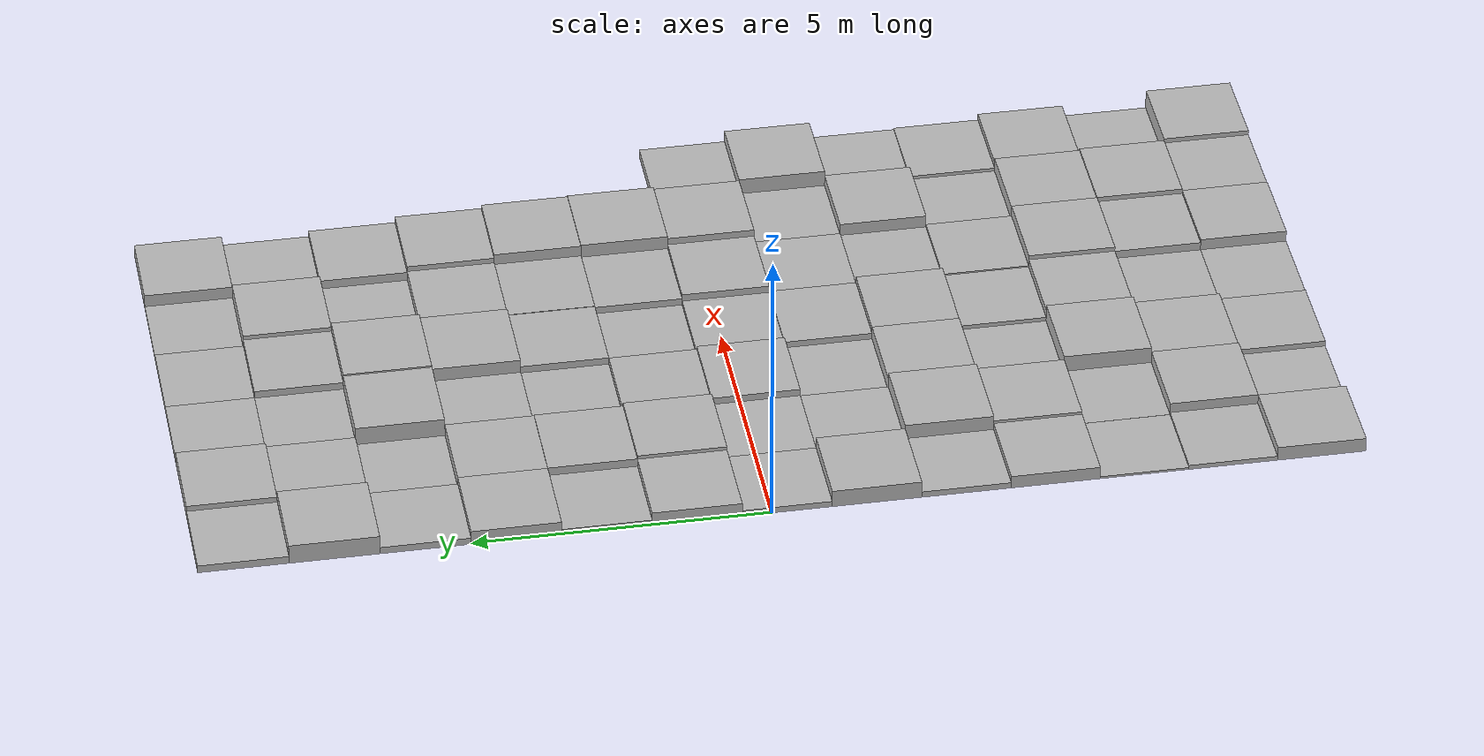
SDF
<sdf version="1.6">
 <model name="uneven_terrain">
  <static>true</static>
  <link name="block_0_0">
   <pose>0.75 -9.25 0.12788535969157674 0 0 0</pose>
   <collision name="collision">
    <geometry><box><size>1.5 1.5 0.2557707193831535</size></box></geometry>
   </collision>
   <visual name="visual">
    <geometry><box><size>1.5 1.5 0.2557707193831535</size></box></geometry>
    <material>
     <script><uri>file://media/materials/scripts/gazebo.material</uri><n>Gazebo/Grey</n></script>
    </material>
   </visual>
  </link>
  <link name="block_0_1">
   <pose>2.25 -9.25 0.005002151044533387 0 0 0</pose>
   <collision name="collision">
    <geometry><box><size>1.5 1.5 0.010004302089066774</size></box></geometry>
   </collision>
   <visual name="visual">
    <geometry><box><size>1.5 1.5 0.010004302089066774</size></box></geometry>
    <material>
     <script><uri>file://media/materials/scripts/gazebo.material</uri><n>Gazebo/Grey</n></script>
    </material>
   </visual>
  </link>
  <link name="block_0_2">
   <pose>3.75 -9.25 0.05500586367382385 0 0 0</pose>
   <collision name="collision">
    <geometry><box><size>1.5 1.5 0.1100117273476477</size></box></geometry>
   </collision>
   <visual name="visual">
    <geometry><box><size>1.5 1.5 0.1100117273476477</size></box></geometry>
    <material>
     <script><uri>file://media/materials/scripts/gazebo.material</uri><n>Gazebo/Grey</n></script>
    </material>
   </visual>
  </link>
  <link name="block_0_3">
   <pose>5.25 -9.25 0.04464214762976455 0 0 0</pose>
   <collision name="collision">
    <geometry><box><size>1.5 1.5 0.0892842952595291</size></box></geometry>
   </collision>
   <visual name="visual">
    <geometry><box><size>1.5 1.5 0.0892842952595291</size></box></geometry>
    <material>
     <script><uri>file://media/materials/scripts/gazebo.material</uri><n>Gazebo/Grey</n></script>
    </material>
   </visual>
  </link>
  <link name="block_0_4">
   <pose>6.75 -9.25 0.14729424283280249 0 0 0</pose>
   <collision name="collision">
    <geometry><box><size>1.5 1.5 0.29458848566560497</size></box></geometry>
   </collision>
   <visual name="visual">
    <geometry><box><size>1.5 1.5 0.29458848566560497</size></box></geometry>
    <material>
     <script><uri>file://media/materials/scripts/gazebo.material</uri><n>Gazebo/Grey</n></script>
    </material>
   </visual>
  </link>
  <link name="block_0_5">
   <pose>8.25 -9.25 0.13533989748458228 0 0 0</pose>
   <collision name="collision">
    <geometry><box><size>1.5 1.5 0.27067979496916456</size></box></geometry>
   </collision>
   <visual name="visual">
    <geometry><box><size>1.5 1.5 0.27067979496916456</size></box></geometry>
    <material>
     <script><uri>file://media/materials/scripts/gazebo.material</uri><n>Gazebo/Grey</n></script>
    </material>
   </visual>
  </link>
  <link name="block_0_6">
   <pose>9.75 -9.25 0.1784359135409691 0 0 0</pose>
   <collision name="collision">
    <geometry><box><size>1.5 1.5 0.3568718270819382</size></box></geometry>
   </collision>
   <visual name="visual">
    <geometry><box><size>1.5 1.5 0.3568718270819382</size></box></geometry>
    <material>
     <script><uri>file://media/materials/scripts/gazebo.material</uri><n>Gazebo/Grey</n></script>
    </material>
   </visual>
  </link>
  <link name="block_1_0">
   <pose>0.75 -7.75 0.0397675301373297 0 0 0</pose>
   <collision name="collision">
    <geometry><box><size>1.5 1.5 0.0795350602746594</size></box></geometry>
   </collision>
   <visual name="visual">
    <geometry><box><size>1.5 1.5 0.0795350602746594</size></box></geometry>
    <material>
     <script><uri>file://media/materials/scripts/gazebo.material</uri><n>Gazebo/Grey</n></script>
    </material>
   </visual>
  </link>
  <link name="block_1_1">
   <pose>2.25 -7.75 0.12997688755590464 0 0 0</pose>
   <collision name="collision">
    <geometry><box><size>1.5 1.5 0.2599537751118093</size></box></geometry>
   </collision>
   <visual name="visual">
    <geometry><box><size>1.5 1.5 0.2599537751118093</size></box></geometry>
    <material>
     <script><uri>file://media/materials/scripts/gazebo.material</uri><n>Gazebo/Grey</n></script>
    </material>
   </visual>
  </link>
  <link name="block_1_2">
   <pose>3.75 -7.75 0.10898829612064334 0 0 0</pose>
   <collision name="collision">
    <geometry><box><size>1.5 1.5 0.21797659224128668</size></box></geometry>
   </collision>
   <visual name="visual">
    <geometry><box><size>1.5 1.5 0.21797659224128668</size></box></geometry>
    <material>
     <script><uri>file://media/materials/scripts/gazebo.material</uri><n>Gazebo/Grey</n></script>
    </material>
   </visual>
  </link>
  <link name="block_1_3">
   <pose>5.25 -7.75 0.04408812440813934 0 0 0</pose>
   <collision name="collision">
    <geometry><box><size>1.5 1.5 0.08817624881627868</size></box></geometry>
   </collision>
   <visual name="visual">
    <geometry><box><size>1.5 1.5 0.08817624881627868</size></box></geometry>
    <material>
     <script><uri>file://media/materials/scripts/gazebo.material</uri><n>Gazebo/Grey</n></script>
    </material>
   </visual>
  </link>
  <link name="block_1_4">
   <pose>6.75 -7.75 0.11785313677518175 0 0 0</pose>
   <collision name="collision">
    <geometry><box><size>1.5 1.5 0.2357062735503635</size></box></geometry>
   </collision>
   <visual name="visual">
    <geometry><box><size>1.5 1.5 0.2357062735503635</size></box></geometry>
    <material>
     <script><uri>file://media/materials/scripts/gazebo.material</uri><n>Gazebo/Grey</n></script>
    </material>
   </visual>
  </link>
  <link name="block_1_5">
   <pose>8.25 -7.75 0.16188609133556534 0 0 0</pose>
   <collision name="collision">
    <geometry><box><size>1.5 1.5 0.32377218267113067</size></box></geometry>
   </collision>
   <visual name="visual">
    <geometry><box><size>1.5 1.5 0.32377218267113067</size></box></geometry>
    <material>
     <script><uri>file://media/materials/scripts/gazebo.material</uri><n>Gazebo/Grey</n></script>
    </material>
   </visual>
  </link>
  <link name="block_1_6">
   <pose>9.75 -7.75 0.0012997519356122034 0 0 0</pose>
   <collision name="collision">
    <geometry><box><size>1.5 1.5 0.002599503871224407</size></box></geometry>
   </collision>
   <visual name="visual">
    <geometry><box><size>1.5 1.5 0.002599503871224407</size></box></geometry>
    <material>
     <script><uri>file://media/materials/scripts/gazebo.material</uri><n>Gazebo/Grey</n></script>
    </material>
   </visual>
  </link>
  <link name="block_2_0">
   <pose>0.75 -6.25 0.01854916867602958 0 0 0</pose>
   <collision name="collision">
    <geometry><box><size>1.5 1.5 0.03709833735205916</size></box></geometry>
   </collision>
   <visual name="visual">
    <geometry><box><size>1.5 1.5 0.03709833735205916</size></box></geometry>
    <material>
     <script><uri>file://media/materials/scripts/gazebo.material</uri><n>Gazebo/Grey</n></script>
    </material>
   </visual>
  </link>
  <link name="block_2_1">
   <pose>2.25 -6.25 0.019343275366692805 0 0 0</pose>
   <collision name="collision">
    <geometry><box><size>1.5 1.5 0.03868655073338561</size></box></geometry>
   </collision>
   <visual name="visual">
    <geometry><box><size>1.5 1.5 0.03868655073338561</size></box></geometry>
    <material>
     <script><uri>file://media/materials/scripts/gazebo.material</uri><n>Gazebo/Grey</n></script>
    </material>
   </visual>
  </link>
  <link name="block_2_2">
   <pose>3.75 -6.25 0.16949887326949198 0 0 0</pose>
   <collision name="collision">
    <geometry><box><size>1.5 1.5 0.33899774653898396</size></box></geometry>
   </collision>
   <visual name="visual">
    <geometry><box><size>1.5 1.5 0.33899774653898396</size></box></geometry>
    <material>
     <script><uri>file://media/materials/scripts/gazebo.material</uri><n>Gazebo/Grey</n></script>
    </material>
   </visual>
  </link>
  <link name="block_2_3">
   <pose>5.25 -6.25 0.12074520627337822 0 0 0</pose>
   <collision name="collision">
    <geometry><box><size>1.5 1.5 0.24149041254675643</size></box></geometry>
   </collision>
   <visual name="visual">
    <geometry><box><size>1.5 1.5 0.24149041254675643</size></box></geometry>
    <material>
     <script><uri>file://media/materials/scripts/gazebo.material</uri><n>Gazebo/Grey</n></script>
    </material>
   </visual>
  </link>
  <link name="block_2_4">
   <pose>6.75 -6.25 0.16142565465487604 0 0 0</pose>
   <collision name="collision">
    <geometry><box><size>1.5 1.5 0.3228513093097521</size></box></geometry>
   </collision>
   <visual name="visual">
    <geometry><box><size>1.5 1.5 0.3228513093097521</size></box></geometry>
    <material>
     <script><uri>file://media/materials/scripts/gazebo.material</uri><n>Gazebo/Grey</n></script>
    </material>
   </visual>
  </link>
  <link name="block_2_5">
   <pose>8.25 -6.25 0.14594635733876357 0 0 0</pose>
   <collision name="collision">
    <geometry><box><size>1.5 1.5 0.29189271467752714</size></box></geometry>
   </collision>
   <visual name="visual">
    <geometry><box><size>1.5 1.5 0.29189271467752714</size></box></geometry>
    <material>
     <script><uri>file://media/materials/scripts/gazebo.material</uri><n>Gazebo/Grey</n></script>
    </material>
   </visual>
  </link>
  <link name="block_2_6">
   <pose>9.75 -6.25 0.10724561829094015 0 0 0</pose>
   <collision name="collision">
    <geometry><box><size>1.5 1.5 0.2144912365818803</size></box></geometry>
   </collision>
   <visual name="visual">
    <geometry><box><size>1.5 1.5 0.2144912365818803</size></box></geometry>
    <material>
     <script><uri>file://media/materials/scripts/gazebo.material</uri><n>Gazebo/Grey</n></script>
    </material>
   </visual>
  </link>
  <link name="block_3_0">
   <pose>0.75 -4.75 0.11547042905135241 0 0 0</pose>
   <collision name="collision">
    <geometry><box><size>1.5 1.5 0.23094085810270482</size></box></geometry>
   </collision>
   <visual name="visual">
    <geometry><box><size>1.5 1.5 0.23094085810270482</size></box></geometry>
    <material>
     <script><uri>file://media/materials/scripts/gazebo.material</uri><n>Gazebo/Grey</n></script>
    </material>
   </visual>
  </link>
  <link name="block_3_1">
   <pose>2.25 -4.75 0.1409143672429847 0 0 0</pose>
   <collision name="collision">
    <geometry><box><size>1.5 1.5 0.2818287344859694</size></box></geometry>
   </collision>
   <visual name="visual">
    <geometry><box><size>1.5 1.5 0.2818287344859694</size></box></geometry>
    <material>
     <script><uri>file://media/materials/scripts/gazebo.material</uri><n>Gazebo/Grey</n></script>
    </material>
   </visual>
  </link>
  <link name="block_3_2">
   <pose>3.75 -4.75 0.009164876731132443 0 0 0</pose>
   <collision name="collision">
    <geometry><box><size>1.5 1.5 0.018329753462264887</size></box></geometry>
   </collision>
   <visual name="visual">
    <geometry><box><size>1.5 1.5 0.018329753462264887</size></box></geometry>
    <material>
     <script><uri>file://media/materials/scripts/gazebo.material</uri><n>Gazebo/Grey</n></script>
    </material>
   </visual>
  </link>
  <link name="block_3_3">
   <pose>5.25 -4.75 0.04557965513030937 0 0 0</pose>
   <collision name="collision">
    <geometry><box><size>1.5 1.5 0.09115931026061874</size></box></geometry>
   </collision>
   <visual name="visual">
    <geometry><box><size>1.5 1.5 0.09115931026061874</size></box></geometry>
    <material>
     <script><uri>file://media/materials/scripts/gazebo.material</uri><n>Gazebo/Grey</n></script>
    </material>
   </visual>
  </link>
  <link name="block_3_4">
   <pose>6.75 -4.75 0.057877592720421436 0 0 0</pose>
   <collision name="collision">
    <geometry><box><size>1.5 1.5 0.11575518544084287</size></box></geometry>
   </collision>
   <visual name="visual">
    <geometry><box><size>1.5 1.5 0.11575518544084287</size></box></geometry>
    <material>
     <script><uri>file://media/materials/scripts/gazebo.material</uri><n>Gazebo/Grey</n></script>
    </material>
   </visual>
  </link>
  <link name="block_3_5">
   <pose>8.25 -4.75 0.015958395384725498 0 0 0</pose>
   <collision name="collision">
    <geometry><box><size>1.5 1.5 0.031916790769450996</size></box></geometry>
   </collision>
   <visual name="visual">
    <geometry><box><size>1.5 1.5 0.031916790769450996</size></box></geometry>
    <material>
     <script><uri>file://media/materials/scripts/gazebo.material</uri><n>Gazebo/Grey</n></script>
    </material>
   </visual>
  </link>
  <link name="block_3_6">
   <pose>9.75 -4.75 0.04655817727220604 0 0 0</pose>
   <collision name="collision">
    <geometry><box><size>1.5 1.5 0.09311635454441208</size></box></geometry>
   </collision>
   <visual name="visual">
    <geometry><box><size>1.5 1.5 0.09311635454441208</size></box></geometry>
    <material>
     <script><uri>file://media/materials/scripts/gazebo.material</uri><n>Gazebo/Grey</n></script>
    </material>
   </visual>
  </link>
  <link name="block_4_0">
   <pose>0.75 -3.25 0.053395564409822675 0 0 0</pose>
   <collision name="collision">
    <geometry><box><size>1.5 1.5 0.10679112881964535</size></box></geometry>
   </collision>
   <visual name="visual">
    <geometry><box><size>1.5 1.5 0.10679112881964535</size></box></geometry>
    <material>
     <script><uri>file://media/materials/scripts/gazebo.material</uri><n>Gazebo/Grey</n></script>
    </material>
   </visual>
  </link>
  <link name="block_4_1">
   <pose>2.25 -3.25 0.1873309175424988 0 0 0</pose>
   <collision name="collision">
    <geometry><box><size>1.5 1.5 0.3746618350849976</size></box></geometry>
   </collision>
   <visual name="visual">
    <geometry><box><size>1.5 1.5 0.3746618350849976</size></box></geometry>
    <material>
     <script><uri>file://media/materials/scripts/gazebo.material</uri><n>Gazebo/Grey</n></script>
    </material>
   </visual>
  </link>
  <link name="block_4_2">
   <pose>3.75 -3.25 0.1296070770493187 0 0 0</pose>
   <collision name="collision">
    <geometry><box><size>1.5 1.5 0.2592141540986374</size></box></geometry>
   </collision>
   <visual name="visual">
    <geometry><box><size>1.5 1.5 0.2592141540986374</size></box></geometry>
    <material>
     <script><uri>file://media/materials/scripts/gazebo.material</uri><n>Gazebo/Grey</n></script>
    </material>
   </visual>
  </link>
  <link name="block_4_3">
   <pose>5.25 -3.25 0.12182620113339765 0 0 0</pose>
   <collision name="collision">
    <geometry><box><size>1.5 1.5 0.2436524022667953</size></box></geometry>
   </collision>
   <visual name="visual">
    <geometry><box><size>1.5 1.5 0.2436524022667953</size></box></geometry>
    <material>
     <script><uri>file://media/materials/scripts/gazebo.material</uri><n>Gazebo/Grey</n></script>
    </material>
   </visual>
  </link>
  <link name="block_4_4">
   <pose>6.75 -3.25 0.0342277296396194 0 0 0</pose>
   <collision name="collision">
    <geometry><box><size>1.5 1.5 0.0684554592792388</size></box></geometry>
   </collision>
   <visual name="visual">
    <geometry><box><size>1.5 1.5 0.0684554592792388</size></box></geometry>
    <material>
     <script><uri>file://media/materials/scripts/gazebo.material</uri><n>Gazebo/Grey</n></script>
    </material>
   </visual>
  </link>
  <link name="block_4_5">
   <pose>8.25 -3.25 0.14582535959006984 0 0 0</pose>
   <collision name="collision">
    <geometry><box><size>1.5 1.5 0.2916507191801397</size></box></geometry>
   </collision>
   <visual name="visual">
    <geometry><box><size>1.5 1.5 0.2916507191801397</size></box></geometry>
    <material>
     <script><uri>file://media/materials/scripts/gazebo.material</uri><n>Gazebo/Grey</n></script>
    </material>
   </visual>
  </link>
  <link name="block_4_6">
   <pose>9.75 -3.25 0.03268049875238568 0 0 0</pose>
   <collision name="collision">
    <geometry><box><size>1.5 1.5 0.06536099750477135</size></box></geometry>
   </collision>
   <visual name="visual">
    <geometry><box><size>1.5 1.5 0.06536099750477135</size></box></geometry>
    <material>
     <script><uri>file://media/materials/scripts/gazebo.material</uri><n>Gazebo/Grey</n></script>
    </material>
   </visual>
  </link>
  <link name="block_5_0">
   <pose>0.75 -1.75 0.15519998230924897 0 0 0</pose>
   <collision name="collision">
    <geometry><box><size>1.5 1.5 0.31039996461849795</size></box></geometry>
   </collision>
   <visual name="visual">
    <geometry><box><size>1.5 1.5 0.31039996461849795</size></box></geometry>
    <material>
     <script><uri>file://media/materials/scripts/gazebo.material</uri><n>Gazebo/Grey</n></script>
    </material>
   </visual>
  </link>
  <link name="block_5_1">
   <pose>2.25 -1.75 0.04580961439282088 0 0 0</pose>
   <collision name="collision">
    <geometry><box><size>1.5 1.5 0.09161922878564176</size></box></geometry>
   </collision>
   <visual name="visual">
    <geometry><box><size>1.5 1.5 0.09161922878564176</size></box></geometry>
    <material>
     <script><uri>file://media/materials/scripts/gazebo.material</uri><n>Gazebo/Grey</n></script>
    </material>
   </visual>
  </link>
  <link name="block_5_2">
   <pose>3.75 -1.75 0.0064200487808075525 0 0 0</pose>
   <collision name="collision">
    <geometry><box><size>1.5 1.5 0.012840097561615105</size></box></geometry>
   </collision>
   <visual name="visual">
    <geometry><box><size>1.5 1.5 0.012840097561615105</size></box></geometry>
    <material>
     <script><uri>file://media/materials/scripts/gazebo.material</uri><n>Gazebo/Grey</n></script>
    </material>
   </visual>
  </link>
  <link name="block_5_3">
   <pose>5.25 -1.75 0.06309060961181638 0 0 0</pose>
   <collision name="collision">
    <geometry><box><size>1.5 1.5 0.12618121922363276</size></box></geometry>
   </collision>
   <visual name="visual">
    <geometry><box><size>1.5 1.5 0.12618121922363276</size></box></geometry>
    <material>
     <script><uri>file://media/materials/scripts/gazebo.material</uri><n>Gazebo/Grey</n></script>
    </material>
   </visual>
  </link>
  <link name="block_5_4">
   <pose>6.75 -1.75 0.053548175195140546 0 0 0</pose>
   <collision name="collision">
    <geometry><box><size>1.5 1.5 0.10709635039028109</size></box></geometry>
   </collision>
   <visual name="visual">
    <geometry><box><size>1.5 1.5 0.10709635039028109</size></box></geometry>
    <material>
     <script><uri>file://media/materials/scripts/gazebo.material</uri><n>Gazebo/Grey</n></script>
    </material>
   </visual>
  </link>
  <link name="block_5_5">
   <pose>8.25 -1.75 0.04219656871726529 0 0 0</pose>
   <collision name="collision">
    <geometry><box><size>1.5 1.5 0.08439313743453059</size></box></geometry>
   </collision>
   <visual name="visual">
    <geometry><box><size>1.5 1.5 0.08439313743453059</size></box></geometry>
    <material>
     <script><uri>file://media/materials/scripts/gazebo.material</uri><n>Gazebo/Grey</n></script>
    </material>
   </visual>
  </link>
  <link name="block_5_6">
   <pose>9.75 -1.75 0.1885819428670109 0 0 0</pose>
   <collision name="collision">
    <geometry><box><size>1.5 1.5 0.3771638857340218</size></box></geometry>
   </collision>
   <visual name="visual">
    <geometry><box><size>1.5 1.5 0.3771638857340218</size></box></geometry>
    <material>
     <script><uri>file://media/materials/scripts/gazebo.material</uri><n>Gazebo/Grey</n></script>
    </material>
   </visual>
  </link>
  <link name="block_6_0">
   <pose>0.75 -0.25 0.052976033299610495 0 0 0</pose>
   <collision name="collision">
    <geometry><box><size>1.5 1.5 0.10595206659922099</size></box></geometry>
   </collision>
   <visual name="visual">
    <geometry><box><size>1.5 1.5 0.10595206659922099</size></box></geometry>
    <material>
     <script><uri>file://media/materials/scripts/gazebo.material</uri><n>Gazebo/Grey</n></script>
    </material>
   </visual>
  </link>
  <link name="block_6_1">
   <pose>2.25 -0.25 0.049325501538796696 0 0 0</pose>
   <collision name="collision">
    <geometry><box><size>1.5 1.5 0.09865100307759339</size></box></geometry>
   </collision>
   <visual name="visual">
    <geometry><box><size>1.5 1.5 0.09865100307759339</size></box></geometry>
    <material>
     <script><uri>file://media/materials/scripts/gazebo.material</uri><n>Gazebo/Grey</n></script>
    </material>
   </visual>
  </link>
  <link name="block_6_2">
   <pose>3.75 -0.25 0.11227362683263016 0 0 0</pose>
   <collision name="collision">
    <geometry><box><size>1.5 1.5 0.22454725366526032</size></box></geometry>
   </collision>
   <visual name="visual">
    <geometry><box><size>1.5 1.5 0.22454725366526032</size></box></geometry>
    <material>
     <script><uri>file://media/materials/scripts/gazebo.material</uri><n>Gazebo/Grey</n></script>
    </material>
   </visual>
  </link>
  <link name="block_6_3">
   <pose>5.25 -0.25 0.05254832170458706 0 0 0</pose>
   <collision name="collision">
    <geometry><box><size>1.5 1.5 0.10509664340917411</size></box></geometry>
   </collision>
   <visual name="visual">
    <geometry><box><size>1.5 1.5 0.10509664340917411</size></box></geometry>
    <material>
     <script><uri>file://media/materials/scripts/gazebo.material</uri><n>Gazebo/Grey</n></script>
    </material>
   </visual>
  </link>
  <link name="block_6_4">
   <pose>6.75 -0.25 0.11691719804470811 0 0 0</pose>
   <collision name="collision">
    <geometry><box><size>1.5 1.5 0.23383439608941622</size></box></geometry>
   </collision>
   <visual name="visual">
    <geometry><box><size>1.5 1.5 0.23383439608941622</size></box></geometry>
    <material>
     <script><uri>file://media/materials/scripts/gazebo.material</uri><n>Gazebo/Grey</n></script>
    </material>
   </visual>
  </link>
  <link name="block_6_5">
   <pose>8.25 -0.25 0.17956457672049542 0 0 0</pose>
   <collision name="collision">
    <geometry><box><size>1.5 1.5 0.35912915344099083</size></box></geometry>
   </collision>
   <visual name="visual">
    <geometry><box><size>1.5 1.5 0.35912915344099083</size></box></geometry>
    <material>
     <script><uri>file://media/materials/scripts/gazebo.material</uri><n>Gazebo/Grey</n></script>
    </material>
   </visual>
  </link>
  <link name="block_6_6">
   <pose>9.75 -0.25 0.07988010102807946 0 0 0</pose>
   <collision name="collision">
    <geometry><box><size>1.5 1.5 0.15976020205615893</size></box></geometry>
   </collision>
   <visual name="visual">
    <geometry><box><size>1.5 1.5 0.15976020205615893</size></box></geometry>
    <material>
     <script><uri>file://media/materials/scripts/gazebo.material</uri><n>Gazebo/Grey</n></script>
    </material>
   </visual>
  </link>
  <link name="block_7_0">
   <pose>0.75 1.25 0.12548920834061802 0 0 0</pose>
   <collision name="collision">
    <geometry><box><size>1.5 1.5 0.25097841668123605</size></box></geometry>
   </collision>
   <visual name="visual">
    <geometry><box><size>1.5 1.5 0.25097841668123605</size></box></geometry>
    <material>
     <script><uri>file://media/materials/scripts/gazebo.material</uri><n>Gazebo/Grey</n></script>
    </material>
   </visual>
  </link>
  <link name="block_7_1">
   <pose>2.25 1.25 0.15841587287259284 0 0 0</pose>
   <collision name="collision">
    <geometry><box><size>1.5 1.5 0.3168317457451857</size></box></geometry>
   </collision>
   <visual name="visual">
    <geometry><box><size>1.5 1.5 0.3168317457451857</size></box></geometry>
    <material>
     <script><uri>file://media/materials/scripts/gazebo.material</uri><n>Gazebo/Grey</n></script>
    </material>
   </visual>
  </link>
  <link name="block_7_2">
   <pose>3.75 1.25 0.08443199335993681 0 0 0</pose>
   <collision name="collision">
    <geometry><box><size>1.5 1.5 0.16886398671987363</size></box></geometry>
   </collision>
   <visual name="visual">
    <geometry><box><size>1.5 1.5 0.16886398671987363</size></box></geometry>
    <material>
     <script><uri>file://media/materials/scripts/gazebo.material</uri><n>Gazebo/Grey</n></script>
    </material>
   </visual>
  </link>
  <link name="block_7_3">
   <pose>5.25 1.25 0.012705541230391427 0 0 0</pose>
   <collision name="collision">
    <geometry><box><size>1.5 1.5 0.025411082460782854</size></box></geometry>
   </collision>
   <visual name="visual">
    <geometry><box><size>1.5 1.5 0.025411082460782854</size></box></geometry>
    <material>
     <script><uri>file://media/materials/scripts/gazebo.material</uri><n>Gazebo/Grey</n></script>
    </material>
   </visual>
  </link>
  <link name="block_7_4">
   <pose>6.75 1.25 0.07632385730130736 0 0 0</pose>
   <collision name="collision">
    <geometry><box><size>1.5 1.5 0.15264771460261473</size></box></geometry>
   </collision>
   <visual name="visual">
    <geometry><box><size>1.5 1.5 0.15264771460261473</size></box></geometry>
    <material>
     <script><uri>file://media/materials/scripts/gazebo.material</uri><n>Gazebo/Grey</n></script>
    </material>
   </visual>
  </link>
  <link name="block_7_5">
   <pose>8.25 1.25 0.19922427604801937 0 0 0</pose>
   <collision name="collision">
    <geometry><box><size>1.5 1.5 0.39844855209603874</size></box></geometry>
   </collision>
   <visual name="visual">
    <geometry><box><size>1.5 1.5 0.39844855209603874</size></box></geometry>
    <material>
     <script><uri>file://media/materials/scripts/gazebo.material</uri><n>Gazebo/Grey</n></script>
    </material>
   </visual>
  </link>
  <link name="block_8_0">
   <pose>0.75 2.75 0.05336503799050856 0 0 0</pose>
   <collision name="collision">
    <geometry><box><size>1.5 1.5 0.10673007598101712</size></box></geometry>
   </collision>
   <visual name="visual">
    <geometry><box><size>1.5 1.5 0.10673007598101712</size></box></geometry>
    <material>
     <script><uri>file://media/materials/scripts/gazebo.material</uri><n>Gazebo/Grey</n></script>
    </material>
   </visual>
  </link>
  <link name="block_8_1">
   <pose>2.25 2.75 0.12819235971596163 0 0 0</pose>
   <collision name="collision">
    <geometry><box><size>1.5 1.5 0.25638471943192326</size></box></geometry>
   </collision>
   <visual name="visual">
    <geometry><box><size>1.5 1.5 0.25638471943192326</size></box></geometry>
    <material>
     <script><uri>file://media/materials/scripts/gazebo.material</uri><n>Gazebo/Grey</n></script>
    </material>
   </visual>
  </link>
  <link name="block_8_2">
   <pose>3.75 2.75 0.02231043471917529 0 0 0</pose>
   <collision name="collision">
    <geometry><box><size>1.5 1.5 0.04462086943835058</size></box></geometry>
   </collision>
   <visual name="visual">
    <geometry><box><size>1.5 1.5 0.04462086943835058</size></box></geometry>
    <material>
     <script><uri>file://media/materials/scripts/gazebo.material</uri><n>Gazebo/Grey</n></script>
    </material>
   </visual>
  </link>
  <link name="block_8_3">
   <pose>5.25 2.75 0.086953050133821 0 0 0</pose>
   <collision name="collision"><geometry><box><size>1.5 1.5 0.173906100267642</size></box></geometry></collision>
   <visual name="visual">
    <geometry><box><size>1.5 1.5 0.173906100267642</size></box></geometry>
    <material>
     <script><uri>file://media/materials/scripts/gazebo.material</uri><n>Gazebo/Grey</n></script>
    </material>
   </visual>
  </link>
  <link name="block_8_4">
   <pose>6.75 2.75 0.0907447412658413 0 0 0</pose>
   <collision name="collision">
    <geometry><box><size>1.5 1.5 0.1814894825316826</size></box></geometry>
   </collision>
   <visual name="visual">
    <geometry><box><size>1.5 1.5 0.1814894825316826</size></box></geometry>
    <material>
     <script><uri>file://media/materials/scripts/gazebo.material</uri><n>Gazebo/Grey</n></script>
    </material>
   </visual>
  </link>
  <link name="block_8_5">
   <pose>8.25 2.75 0.19076318550421603 0 0 0</pose>
   <collision name="collision">
    <geometry><box><size>1.5 1.5 0.38152637100843206</size></box></geometry>
   </collision>
   <visual name="visual">
    <geometry><box><size>1.5 1.5 0.38152637100843206</size></box></geometry>
    <material>
     <script><uri>file://media/materials/scripts/gazebo.material</uri><n>Gazebo/Grey</n></script>
    </material>
   </visual>
  </link>
  <link name="block_9_0">
   <pose>0.75 4.25 0.12778989897320103 0 0 0</pose>
   <collision name="collision">
    <geometry><box><size>1.5 1.5 0.25557979794640207</size></box></geometry>
   </collision>
   <visual name="visual">
    <geometry><box><size>1.5 1.5 0.25557979794640207</size></box></geometry>
    <material>
     <script><uri>file://media/materials/scripts/gazebo.material</uri><n>Gazebo/Grey</n></script>
    </material>
   </visual>
  </link>
  <link name="block_9_1">
   <pose>2.25 4.25 0.12179404228763446 0 0 0</pose>
   <collision name="collision">
    <geometry><box><size>1.5 1.5 0.24358808457526893</size></box></geometry>
   </collision>
   <visual name="visual">
    <geometry><box><size>1.5 1.5 0.24358808457526893</size></box></geometry>
    <material>
     <script><uri>file://media/materials/scripts/gazebo.material</uri><n>Gazebo/Grey</n></script>
    </material>
   </visual>
  </link>
  <link name="block_9_2">
   <pose>3.75 4.25 0.030567853709926963 0 0 0</pose>
   <collision name="collision">
    <geometry><box><size>1.5 1.5 0.06113570741985393</size></box></geometry>
   </collision>
   <visual name="visual">
    <geometry><box><size>1.5 1.5 0.06113570741985393</size></box></geometry>
    <material>
     <script><uri>file://media/materials/scripts/gazebo.material</uri><n>Gazebo/Grey</n></script>
    </material>
   </visual>
  </link>
  <link name="block_9_3">
   <pose>5.25 4.25 0.15250216001503025 0 0 0</pose>
   <collision name="collision">
    <geometry><box><size>1.5 1.5 0.3050043200300605</size></box></geometry>
   </collision>
   <visual name="visual">
    <geometry><box><size>1.5 1.5 0.3050043200300605</size></box></geometry>
    <material>
     <script><uri>file://media/materials/scripts/gazebo.material</uri><n>Gazebo/Grey</n></script>
    </material>
   </visual>
  </link>
  <link name="block_9_4">
   <pose>6.75 4.25 0.10787580602392516 0 0 0</pose>
   <collision name="collision">
    <geometry><box><size>1.5 1.5 0.21575161204785032</size></box></geometry>
   </collision>
   <visual name="visual">
    <geometry><box><size>1.5 1.5 0.21575161204785032</size></box></geometry>
    <material>
     <script><uri>file://media/materials/scripts/gazebo.material</uri><n>Gazebo/Grey</n></script>
    </material>
   </visual>
  </link>
  <link name="block_9_5">
   <pose>8.25 4.25 0.15572529572611166 0 0 0</pose>
   <collision name="collision">
    <geometry><box><size>1.5 1.5 0.3114505914522233</size></box></geometry>
   </collision>
   <visual name="visual">
    <geometry><box><size>1.5 1.5 0.3114505914522233</size></box></geometry>
    <material>
     <script><uri>file://media/materials/scripts/gazebo.material</uri><n>Gazebo/Grey</n></script>
    </material>
   </visual>
  </link>
  <link name="block_10_0">
   <pose>0.75 5.75 0.061502825080532286 0 0 0</pose>
   <collision name="collision">
    <geometry><box><size>1.5 1.5 0.12300565016106457</size></box></geometry>
   </collision>
   <visual name="visual">
    <geometry><box><size>1.5 1.5 0.12300565016106457</size></box></geometry>
    <material>
     <script><uri>file://media/materials/scripts/gazebo.material</uri><n>Gazebo/Grey</n></script>
    </material>
   </visual>
  </link>
  <link name="block_10_1">
   <pose>2.25 5.75 0.011585033298837512 0 0 0</pose>
   <collision name="collision">
    <geometry><box><size>1.5 1.5 0.023170066597675024</size></box></geometry>
   </collision>
   <visual name="visual">
    <geometry><box><size>1.5 1.5 0.023170066597675024</size></box></geometry>
    <material>
     <script><uri>file://media/materials/scripts/gazebo.material</uri><n>Gazebo/Grey</n></script>
    </material>
   </visual>
  </link>
  <link name="block_10_2">
   <pose>3.75 5.75 0.1756019198408081 0 0 0</pose>
   <collision name="collision">
    <geometry><box><size>1.5 1.5 0.3512038396816162</size></box></geometry>
   </collision>
   <visual name="visual">
    <geometry><box><size>1.5 1.5 0.3512038396816162</size></box></geometry>
    <material>
     <script><uri>file://media/materials/scripts/gazebo.material</uri><n>Gazebo/Grey</n></script>
    </material>
   </visual>
  </link>
  <link name="block_10_3">
   <pose>5.25 5.75 0.18938988905959883 0 0 0</pose>
   <collision name="collision">
    <geometry><box><size>1.5 1.5 0.37877977811919766</size></box></geometry>
   </collision>
   <visual name="visual">
    <geometry><box><size>1.5 1.5 0.37877977811919766</size></box></geometry>
    <material>
     <script><uri>file://media/materials/scripts/gazebo.material</uri><n>Gazebo/Grey</n></script>
    </material>
   </visual>
  </link>
  <link name="block_10_4">
   <pose>6.75 5.75 0.017130690413575757 0 0 0</pose>
   <collision name="collision">
    <geometry><box><size>1.5 1.5 0.034261380827151515</size></box></geometry>
   </collision>
   <visual name="visual">
    <geometry><box><size>1.5 1.5 0.034261380827151515</size></box></geometry>
    <material>
     <script><uri>file://media/materials/scripts/gazebo.material</uri><n>Gazebo/Grey</n></script>
    </material>
   </visual>
  </link>
  <link name="block_10_5">
   <pose>8.25 5.75 0.09719809266332276 0 0 0</pose>
   <collision name="collision">
    <geometry><box><size>1.5 1.5 0.19439618532664552</size></box></geometry>
   </collision>
   <visual name="visual">
    <geometry><box><size>1.5 1.5 0.19439618532664552</size></box></geometry>
    <material>
     <script><uri>file://media/materials/scripts/gazebo.material</uri><n>Gazebo/Grey</n></script>
    </material>
   </visual>
  </link>
  <link name="block_11_0">
   <pose>0.75 7.25 0.1744866082170515 0 0 0</pose>
   <collision name="collision"><geometry><box><size>1.5 1.5 0.348973216434103</size></box></geometry></collision>
   <visual name="visual">
    <geometry><box><size>1.5 1.5 0.348973216434103</size></box></geometry>
    <material>
     <script><uri>file://media/materials/scripts/gazebo.material</uri><n>Gazebo/Grey</n></script>
    </material>
   </visual>
  </link>
  <link name="block_11_1">
   <pose>2.25 7.25 0.08462758804017739 0 0 0</pose>
   <collision name="collision">
    <geometry><box><size>1.5 1.5 0.16925517608035479</size></box></geometry>
   </collision>
   <visual name="visual">
    <geometry><box><size>1.5 1.5 0.16925517608035479</size></box></geometry>
    <material>
     <script><uri>file://media/materials/scripts/gazebo.material</uri><n>Gazebo/Grey</n></script>
    </material>
   </visual>
  </link>
  <link name="block_11_2">
   <pose>3.75 7.25 0.042359641088416417 0 0 0</pose>
   <collision name="collision">
    <geometry><box><size>1.5 1.5 0.08471928217683283</size></box></geometry>
   </collision>
   <visual name="visual">
    <geometry><box><size>1.5 1.5 0.08471928217683283</size></box></geometry>
    <material>
     <script><uri>file://media/materials/scripts/gazebo.material</uri><n>Gazebo/Grey</n></script>
    </material>
   </visual>
  </link>
  <link name="block_11_3">
   <pose>5.25 7.25 0.10785921775589168 0 0 0</pose>
   <collision name="collision">
    <geometry><box><size>1.5 1.5 0.21571843551178335</size></box></geometry>
   </collision>
   <visual name="visual">
    <geometry><box><size>1.5 1.5 0.21571843551178335</size></box></geometry>
    <material>
     <script><uri>file://media/materials/scripts/gazebo.material</uri><n>Gazebo/Grey</n></script>
    </material>
   </visual>
  </link>
  <link name="block_11_4">
   <pose>6.75 7.25 0.14598621381799523 0 0 0</pose>
   <collision name="collision">
    <geometry><box><size>1.5 1.5 0.29197242763599046</size></box></geometry>
   </collision>
   <visual name="visual">
    <geometry><box><size>1.5 1.5 0.29197242763599046</size></box></geometry>
    <material>
     <script><uri>file://media/materials/scripts/gazebo.material</uri><n>Gazebo/Grey</n></script>
    </material>
   </visual>
  </link>
  <link name="block_11_5">
   <pose>8.25 7.25 0.040230212677939185 0 0 0</pose>
   <collision name="collision">
    <geometry><box><size>1.5 1.5 0.08046042535587837</size></box></geometry>
   </collision>
   <visual name="visual">
    <geometry><box><size>1.5 1.5 0.08046042535587837</size></box></geometry>
    <material>
     <script><uri>file://media/materials/scripts/gazebo.material</uri><n>Gazebo/Grey</n></script>
    </material>
   </visual>
  </link>
  <link name="block_12_0">
   <pose>0.75 8.75 0.06761711242949107 0 0 0</pose>
   <collision name="collision">
    <geometry><box><size>1.5 1.5 0.13523422485898215</size></box></geometry>
   </collision>
   <visual name="visual">
    <geometry><box><size>1.5 1.5 0.13523422485898215</size></box></geometry>
    <material>
     <script><uri>file://media/materials/scripts/gazebo.material</uri><n>Gazebo/Grey</n></script>
    </material>
   </visual>
  </link>
  <link name="block_12_1">
   <pose>2.25 8.75 0.11766174369144666 0 0 0</pose>
   <collision name="collision">
    <geometry><box><size>1.5 1.5 0.23532348738289333</size></box></geometry>
   </collision>
   <visual name="visual">
    <geometry><box><size>1.5 1.5 0.23532348738289333</size></box></geometry>
    <material>
     <script><uri>file://media/materials/scripts/gazebo.material</uri><n>Gazebo/Grey</n></script>
    </material>
   </visual>
  </link>
  <link name="block_12_2">
   <pose>3.75 8.75 0.046022946519315405 0 0 0</pose>
   <collision name="collision">
    <geometry><box><size>1.5 1.5 0.09204589303863081</size></box></geometry>
   </collision>
   <visual name="visual">
    <geometry><box><size>1.5 1.5 0.09204589303863081</size></box></geometry>
    <material>
     <script><uri>file://media/materials/scripts/gazebo.material</uri><n>Gazebo/Grey</n></script>
    </material>
   </visual>
  </link>
  <link name="block_12_3">
   <pose>5.25 8.75 0.0440434768903119 0 0 0</pose>
   <collision name="collision">
    <geometry><box><size>1.5 1.5 0.0880869537806238</size></box></geometry>
   </collision>
   <visual name="visual">
    <geometry><box><size>1.5 1.5 0.0880869537806238</size></box></geometry>
    <material>
     <script><uri>file://media/materials/scripts/gazebo.material</uri><n>Gazebo/Grey</n></script>
    </material>
   </visual>
  </link>
  <link name="block_12_4">
   <pose>6.75 8.75 0.014198617201806507 0 0 0</pose>
   <collision name="collision">
    <geometry><box><size>1.5 1.5 0.028397234403613015</size></box></geometry>
   </collision>
   <visual name="visual">
    <geometry><box><size>1.5 1.5 0.028397234403613015</size></box></geometry>
    <material>
     <script><uri>file://media/materials/scripts/gazebo.material</uri><n>Gazebo/Grey</n></script>
    </material>
   </visual>
  </link>
  <link name="block_12_5">
   <pose>8.25 8.75 0.1262205914540198 0 0 0</pose>
   <collision name="collision">
    <geometry><box><size>1.5 1.5 0.2524411829080396</size></box></geometry>
   </collision>
   <visual name="visual">
    <geometry><box><size>1.5 1.5 0.2524411829080396</size></box></geometry>
    <material>
     <script><uri>file://media/materials/scripts/gazebo.material</uri><n>Gazebo/Grey</n></script>
    </material>
   </visual>
  </link>
 </model>
</sdf>
